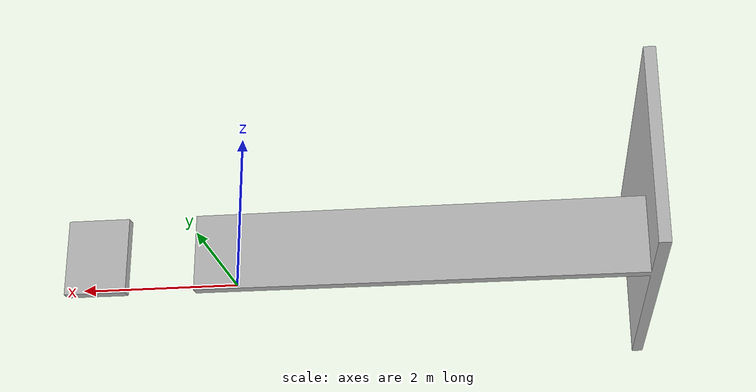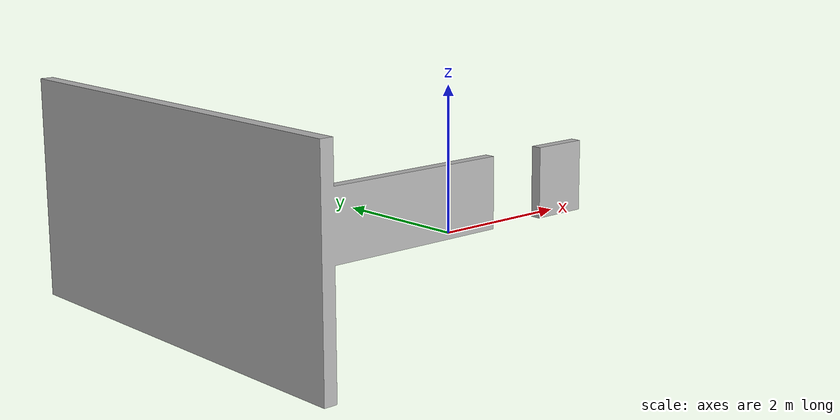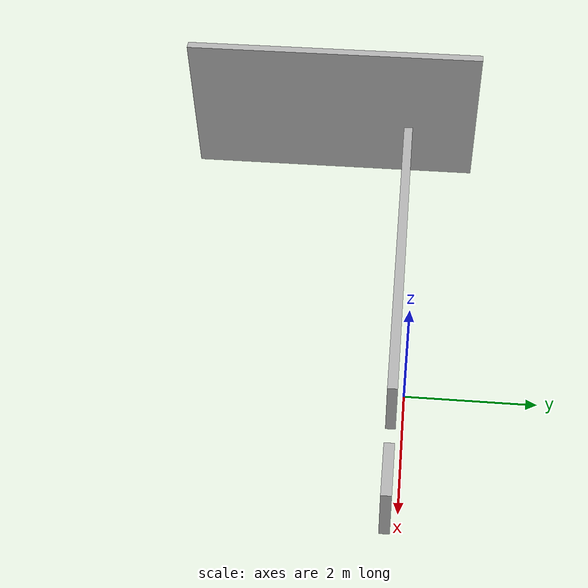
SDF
<sdf version='1.6'>
  <model name='turtlebot3_house'>

    <link name='Wall_108'>
      <pose frame=''>0 0 0 0 0 0</pose>
      <self_collide>0</self_collide>
      <kinematic>0</kinematic>

      <visual name="wall_visual">
        <pose>-0.064 0 0 0 0 0</pose>
        <geometry>
          <mesh>
            <uri>model://turtlebot3_house/meshes/turtlebot3_house_text.dae</uri>
            <scale>1.0 1.0 1.0</scale>
          </mesh>
        </geometry>
      </visual>

      <collision name='wall_collision'>
        <laser_retro>0</laser_retro>
        <max_contacts>10</max_contacts>
        <geometry>
          <mesh>
            <uri>model://turtlebot3_house/meshes/turtlebot3_house_text.dae</uri>
            <scale>1.0 1.0 1.0</scale>
          </mesh>
        </geometry>
        <surface>
          <friction>
            <ode>
              <mu>1</mu>
              <mu2>1</mu2>
              <fdir1>0 0 0</fdir1>
              <slip1>0</slip1>
              <slip2>0</slip2>
            </ode>
            <torsional>
              <coefficient>1</coefficient>
              <patch_radius>0</patch_radius>
              <surface_radius>0</surface_radius>
              <use_patch_radius>1</use_patch_radius>
              <ode>
                <slip>0</slip>
              </ode>
            </torsional>
          </friction>
          <bounce>
            <restitution_coefficient>0</restitution_coefficient>
            <threshold>1e+06</threshold>
          </bounce>
          <contact>
            <collide_without_contact>0</collide_without_contact>
            <collide_without_contact_bitmask>1</collide_without_contact_bitmask>
            <collide_bitmask>1</collide_bitmask>
            <ode>
              <soft_cfm>0</soft_cfm>
              <soft_erp>0.2</soft_erp>
              <kp>1e+13</kp>
              <kd>1</kd>
              <max_vel>0.01</max_vel>
              <min_depth>0</min_depth>
            </ode>
            <bullet>
              <split_impulse>1</split_impulse>
              <split_impulse_penetration_threshold>-0.01</split_impulse_penetration_threshold>
              <soft_cfm>0</soft_cfm>
              <soft_erp>0.2</soft_erp>
              <kp>1e+13</kp>
              <kd>1</kd>
            </bullet>
          </contact>
        </surface>
      </collision>

    </link>

    <static>1</static>
    <allow_auto_disable>1</allow_auto_disable>
  </model>
</sdf>
